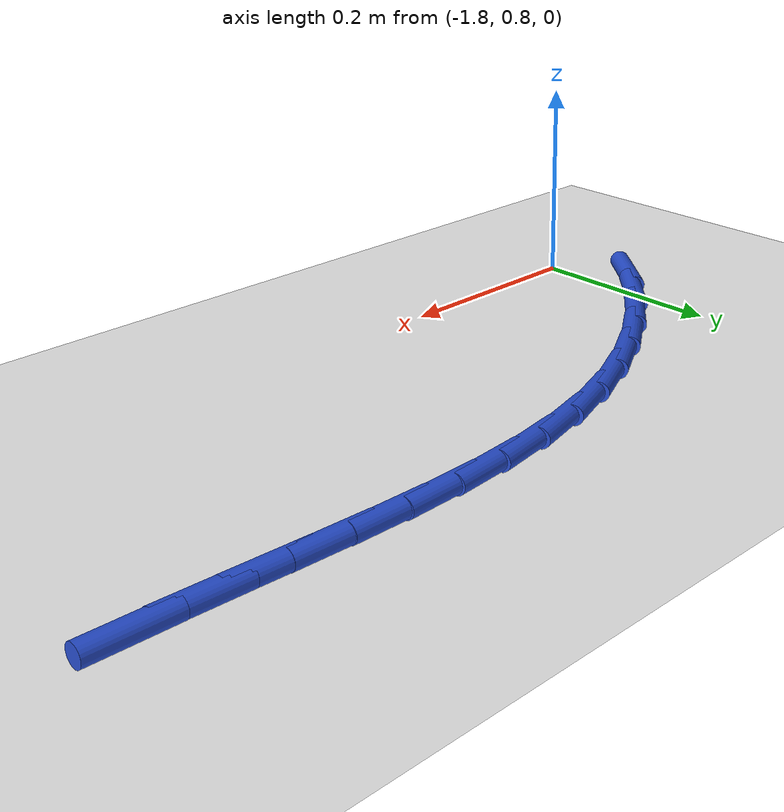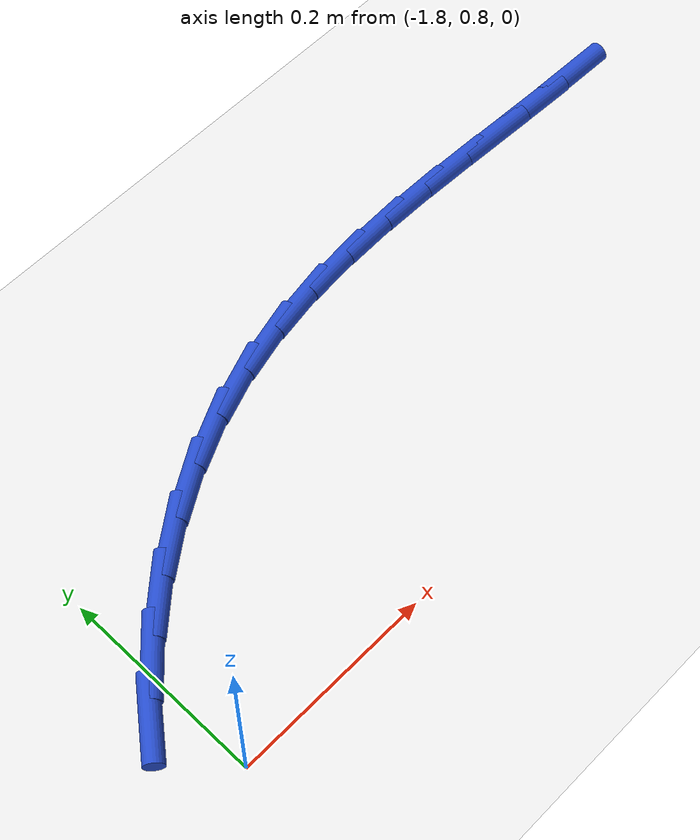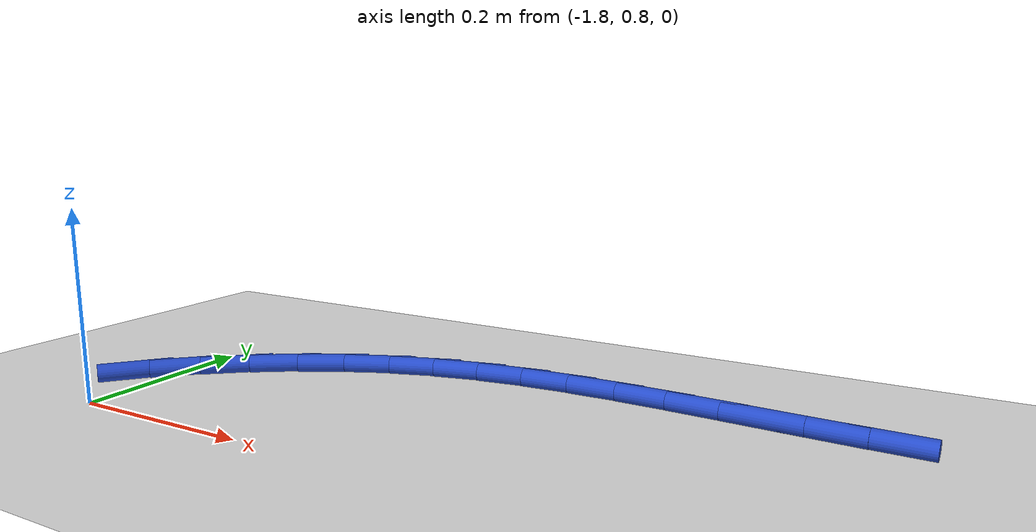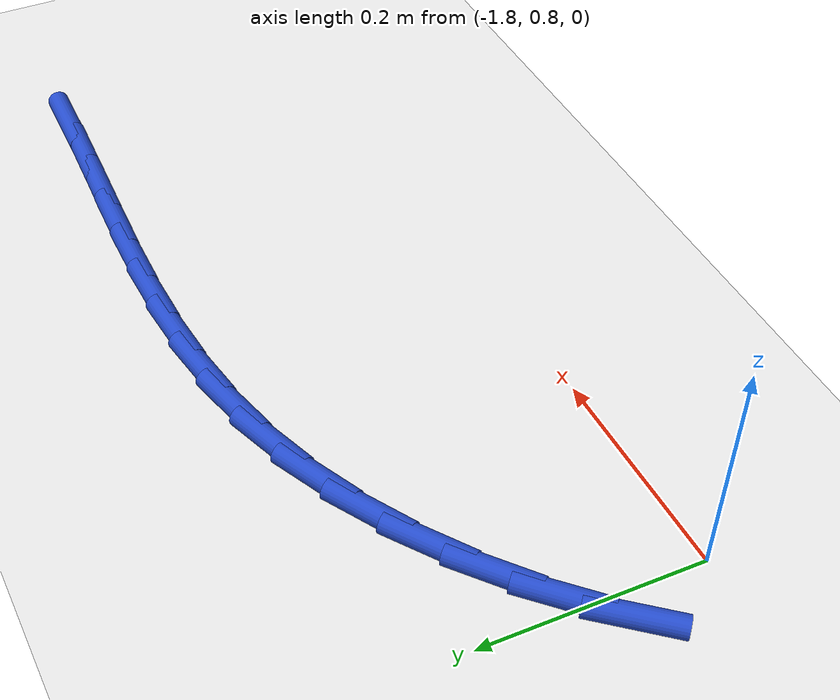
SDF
<sdf version="1.6">
 <world name="default">
  <model name="ground_plane">
   <static>1</static>
   <link name="link">
    <collision name="collision">
     <geometry><plane><normal>0 0 1</normal><size>100 100</size></plane></geometry>
     <surface><friction><ode><mu>100</mu><mu2>50</mu2></ode></friction></surface>
    </collision>
    <visual name="visual">
     <cast_shadows>0</cast_shadows>
     <geometry><plane><normal>0 0 1</normal><size>100 100</size></plane></geometry>
     <material>
      <script><uri>file://media/materials/scripts/gazebo.material</uri><name>Gazebo/WhiteGlow</name></script>
     </material>
    </visual>
   </link>
  </model>
  <model name="line">
   <link name="link_33">
    <pose>-1.0802004531354432 1.0749063280658082 0.01 0 1.57 -0.02844534885782235</pose>
    <collision name="collision">
     <geometry><cylinder><radius>0.01</radius><length>0.08</length></cylinder></geometry>
    </collision>
    <visual name="visual">
     <material>
      <script><name>Gazebo/Blue</name><uri>file://media/materials/scripts/gazebo.material</uri></script>
     </material>
     <geometry><cylinder><radius>0.01</radius><length>0.08</length></cylinder></geometry>
    </visual>
   </link>
   <link name="link_34">
    <pose>-1.136060833072389 1.0764957247639249 0.01 0 1.57 -0.045189403344751765</pose>
    <collision name="collision">
     <geometry><cylinder><radius>0.01</radius><length>0.08</length></cylinder></geometry>
    </collision>
    <visual name="visual">
     <material>
      <script><name>Gazebo/Blue</name><uri>file://media/materials/scripts/gazebo.material</uri></script>
     </material>
     <geometry><cylinder><radius>0.01</radius><length>0.08</length></cylinder></geometry>
    </visual>
   </link>
   <link name="link_35">
    <pose>-1.1912522243164323 1.0789914898878252 0.01 0 1.57 -0.04829448146893442</pose>
    <collision name="collision">
     <geometry><cylinder><radius>0.01</radius><length>0.08</length></cylinder></geometry>
    </collision>
    <visual name="visual">
     <material>
      <script><name>Gazebo/Blue</name><uri>file://media/materials/scripts/gazebo.material</uri></script>
     </material>
     <geometry><cylinder><radius>0.01</radius><length>0.08</length></cylinder></geometry>
    </visual>
   </link>
   <link name="link_36">
    <pose>-1.2457694220408775 1.0816264185330355 0.01 0 1.57 -0.03725929567612965</pose>
    <collision name="collision">
     <geometry><cylinder><radius>0.01</radius><length>0.08</length></cylinder></geometry>
    </collision>
    <visual name="visual">
     <material>
      <script><name>Gazebo/Blue</name><uri>file://media/materials/scripts/gazebo.material</uri></script>
     </material>
     <geometry><cylinder><radius>0.01</radius><length>0.08</length></cylinder></geometry>
    </visual>
   </link>
   <link name="link_37">
    <pose>-1.2996072214190288 1.083633305795082 0.01 0 1.57 -0.011506626573390745</pose>
    <collision name="collision">
     <geometry><cylinder><radius>0.01</radius><length>0.08</length></cylinder></geometry>
    </collision>
    <visual name="visual">
     <material>
      <script><name>Gazebo/Blue</name><uri>file://media/materials/scripts/gazebo.material</uri></script>
     </material>
     <geometry><cylinder><radius>0.01</radius><length>0.08</length></cylinder></geometry>
    </visual>
   </link>
   <link name="link_38">
    <pose>-1.3527604176241912 1.0842449467694908 0.01 0 1.57 0.029551251182422408</pose>
    <collision name="collision">
     <geometry><cylinder><radius>0.01</radius><length>0.08</length></cylinder></geometry>
    </collision>
    <visual name="visual">
     <material>
      <script><name>Gazebo/Blue</name><uri>file://media/materials/scripts/gazebo.material</uri></script>
     </material>
     <geometry><cylinder><radius>0.01</radius><length>0.08</length></cylinder></geometry>
    </visual>
   </link>
   <link name="link_39">
    <pose>-1.405223805829668 1.0826941365517875 0.01 0 1.57 0.08633319370788725</pose>
    <collision name="collision">
     <geometry><cylinder><radius>0.01</radius><length>0.08</length></cylinder></geometry>
    </collision>
    <visual name="visual">
     <material>
      <script><name>Gazebo/Blue</name><uri>file://media/materials/scripts/gazebo.material</uri></script>
     </material>
     <geometry><cylinder><radius>0.01</radius><length>0.08</length></cylinder></geometry>
    </visual>
   </link>
   <link name="link_40">
    <pose>-1.4569921812087636 1.0782136702374991 0.01 0 1.57 0.15877787586740502</pose>
    <collision name="collision">
     <geometry><cylinder><radius>0.01</radius><length>0.08</length></cylinder></geometry>
    </collision>
    <visual name="visual">
     <material>
      <script><name>Gazebo/Blue</name><uri>file://media/materials/scripts/gazebo.material</uri></script>
     </material>
     <geometry><cylinder><radius>0.01</radius><length>0.08</length></cylinder></geometry>
    </visual>
   </link>
   <link name="link_41">
    <pose>-1.5080603389347822 1.0700363429221507 0.01 0 1.57 0.24592609348368535</pose>
    <collision name="collision">
     <geometry><cylinder><radius>0.01</radius><length>0.08</length></cylinder></geometry>
    </collision>
    <visual name="visual">
     <material>
      <script><name>Gazebo/Blue</name><uri>file://media/materials/scripts/gazebo.material</uri></script>
     </material>
     <geometry><cylinder><radius>0.01</radius><length>0.08</length></cylinder></geometry>
    </visual>
   </link>
   <link name="link_42">
    <pose>-1.5584230741810292 1.057394949701269 0.01 0 1.57 0.3449317764629462</pose>
    <collision name="collision">
     <geometry><cylinder><radius>0.01</radius><length>0.08</length></cylinder></geometry>
    </collision>
    <visual name="visual">
     <material>
      <script><name>Gazebo/Blue</name><uri>file://media/materials/scripts/gazebo.material</uri></script>
     </material>
     <geometry><cylinder><radius>0.01</radius><length>0.08</length></cylinder></geometry>
    </visual>
   </link>
   <link name="link_43">
    <pose>-1.6080558750739045 1.0395621072421992 0.01 0 1.57 0.4437256653863735</pose>
    <collision name="collision">
     <geometry><cylinder><radius>0.01</radius><length>0.08</length></cylinder></geometry>
    </collision>
    <visual name="visual">
     <material>
      <script><name>Gazebo/Blue</name><uri>file://media/materials/scripts/gazebo.material</uri></script>
     </material>
     <geometry><cylinder><radius>0.01</radius><length>0.08</length></cylinder></geometry>
    </visual>
   </link>
   <link name="link_44">
    <pose>-1.6566079694819844 1.0164833573029788 0.01 0 1.57 0.5358443531647309</pose>
    <collision name="collision">
     <geometry><cylinder><radius>0.01</radius><length>0.08</length></cylinder></geometry>
    </collision>
    <visual name="visual">
     <material>
      <script><name>Gazebo/Blue</name><uri>file://media/materials/scripts/gazebo.material</uri></script>
     </material>
     <geometry><cylinder><radius>0.01</radius><length>0.08</length></cylinder></geometry>
    </visual>
   </link>
   <link name="link_45">
    <pose>-1.7034568299948367 0.9886647479901468 0.01 0 1.57 0.6237960213328198</pose>
    <collision name="collision">
     <geometry><cylinder><radius>0.01</radius><length>0.08</length></cylinder></geometry>
    </collision>
    <visual name="visual">
     <material>
      <script><name>Gazebo/Blue</name><uri>file://media/materials/scripts/gazebo.material</uri></script>
     </material>
     <geometry><cylinder><radius>0.01</radius><length>0.08</length></cylinder></geometry>
    </visual>
   </link>
   <link name="link_46">
    <pose>-1.747971637459007 0.9566294294684661 0.01 0 1.57 0.7102147410046773</pose>
    <collision name="collision">
     <geometry><cylinder><radius>0.01</radius><length>0.08</length></cylinder></geometry>
    </collision>
    <visual name="visual">
     <material>
      <script><name>Gazebo/Blue</name><uri>file://media/materials/scripts/gazebo.material</uri></script>
     </material>
     <geometry><cylinder><radius>0.01</radius><length>0.08</length></cylinder></geometry>
    </visual>
   </link>
   <link name="link_47">
    <pose>-1.789521572721038 0.9209005519027008 0.01 0 1.57 0.79769421415725</pose>
    <collision name="collision">
     <geometry><cylinder><radius>0.01</radius><length>0.08</length></cylinder></geometry>
    </collision>
    <visual name="visual">
     <material>
      <script><name>Gazebo/Blue</name><uri>file://media/materials/scripts/gazebo.material</uri></script>
     </material>
     <geometry><cylinder><radius>0.01</radius><length>0.08</length></cylinder></geometry>
    </visual>
   </link>
   <link name="link_48">
    <pose>-1.8274758166274756 0.8820012654576148 0.01 0 1.57 0.8888979648968891</pose>
    <collision name="collision">
     <geometry><cylinder><radius>0.01</radius><length>0.08</length></cylinder></geometry>
    </collision>
    <visual name="visual">
     <material>
      <script><name>Gazebo/Blue</name><uri>file://media/materials/scripts/gazebo.material</uri></script>
     </material>
     <geometry><cylinder><radius>0.01</radius><length>0.08</length></cylinder></geometry>
    </visual>
   </link>
  </model>
 </world>
</sdf>
